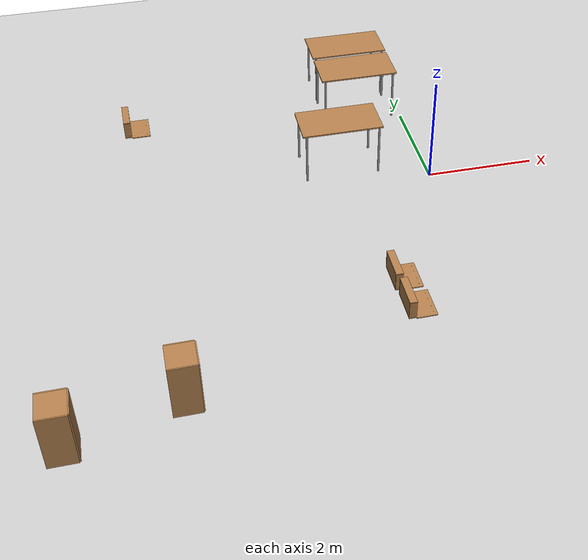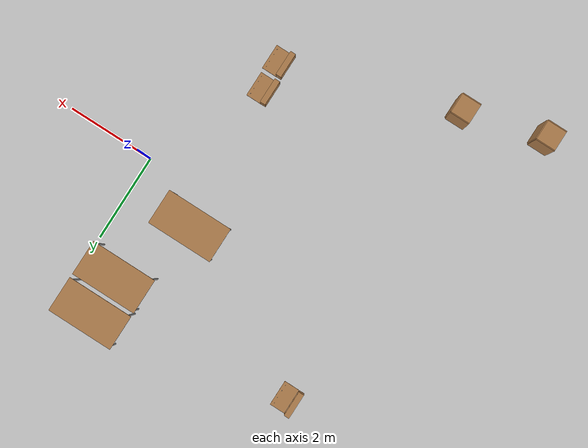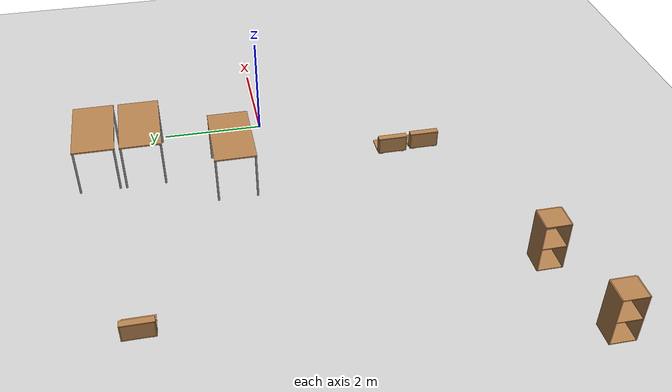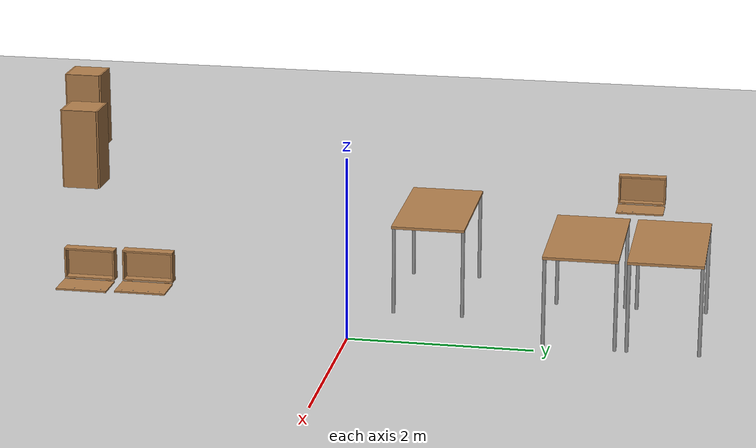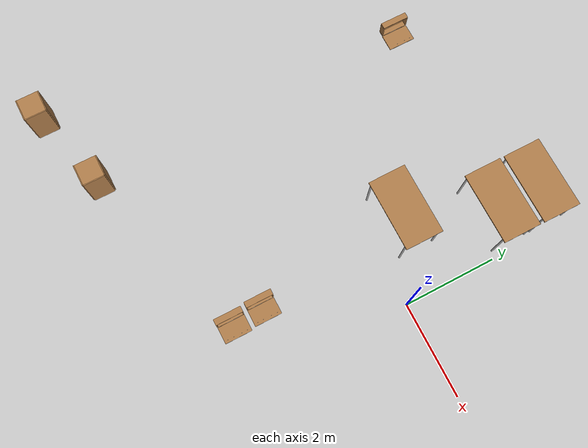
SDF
<sdf version="1.7">
 <world name="default">
  <model name="ground_plane">
   <static>1</static>
   <link name="link">
    <collision name="collision">
     <geometry><plane><normal>0 0 1</normal><size>100 100</size></plane></geometry>
     <surface><friction><ode><mu>100</mu><mu2>50</mu2></ode></friction></surface>
    </collision>
    <visual name="visual">
     <cast_shadows>0</cast_shadows>
     <geometry><plane><normal>0 0 1</normal><size>100 100</size></plane></geometry>
     <material>
      <script><uri>file://media/materials/scripts/gazebo.material</uri><name>Gazebo/Grey</name></script>
     </material>
    </visual>
   </link>
  </model>
  <model name="table">
   <static>1</static>
   <link name="link">
    <collision name="surface">
     <pose>0 0 1 0 -0 0</pose>
     <geometry><box><size>1.5 0.8 0.03</size></box></geometry>
     <surface><friction><ode><mu>0.6</mu><mu2>0.6</mu2></ode></friction></surface>
    </collision>
    <visual name="visual1">
     <pose>0 0 1 0 -0 0</pose>
     <geometry><box><size>1.5 0.8 0.03</size></box></geometry>
     <material>
      <script><uri>file://media/materials/scripts/gazebo.material</uri><name>Gazebo/Wood</name></script>
     </material>
    </visual>
    <collision name="front_left_leg">
     <pose>0.68 0.38 0.5 0 -0 0</pose>
     <geometry><cylinder><radius>0.02</radius><length>1</length></cylinder></geometry>
    </collision>
    <visual name="front_left_leg">
     <pose>0.68 0.38 0.5 0 -0 0</pose>
     <geometry><cylinder><radius>0.02</radius><length>1</length></cylinder></geometry>
     <material>
      <script><uri>file://media/materials/scripts/gazebo.material</uri><name>Gazebo/Grey</name></script>
     </material>
    </visual>
    <collision name="front_right_leg">
     <pose>0.68 -0.38 0.5 0 -0 0</pose>
     <geometry><cylinder><radius>0.02</radius><length>1</length></cylinder></geometry>
    </collision>
    <visual name="front_right_leg">
     <pose>0.68 -0.38 0.5 0 -0 0</pose>
     <geometry><cylinder><radius>0.02</radius><length>1</length></cylinder></geometry>
     <material>
      <script><uri>file://media/materials/scripts/gazebo.material</uri><name>Gazebo/Grey</name></script>
     </material>
    </visual>
    <collision name="back_right_leg">
     <pose>-0.68 -0.38 0.5 0 -0 0</pose>
     <geometry><cylinder><radius>0.02</radius><length>1</length></cylinder></geometry>
    </collision>
    <visual name="back_right_leg">
     <pose>-0.68 -0.38 0.5 0 -0 0</pose>
     <geometry><cylinder><radius>0.02</radius><length>1</length></cylinder></geometry>
     <material>
      <script><uri>file://media/materials/scripts/gazebo.material</uri><name>Gazebo/Grey</name></script>
     </material>
    </visual>
    <collision name="back_left_leg">
     <pose>-0.68 0.38 0.5 0 -0 0</pose>
     <geometry><cylinder><radius>0.02</radius><length>1</length></cylinder></geometry>
    </collision>
    <visual name="back_left_leg">
     <pose>-0.68 0.38 0.5 0 -0 0</pose>
     <geometry><cylinder><radius>0.02</radius><length>1</length></cylinder></geometry>
     <material>
      <script><uri>file://media/materials/scripts/gazebo.material</uri><name>Gazebo/Grey</name></script>
     </material>
    </visual>
   </link>
   <pose>-1.58266 0.729495 0 0 -0 0</pose>
  </model>
  <model name="table_0">
   <static>1</static>
   <link name="link">
    <collision name="surface">
     <pose>0 0 1 0 -0 0</pose>
     <geometry><box><size>1.5 0.8 0.03</size></box></geometry>
     <surface><friction><ode><mu>0.6</mu><mu2>0.6</mu2></ode></friction></surface>
    </collision>
    <visual name="visual1">
     <pose>0 0 1 0 -0 0</pose>
     <geometry><box><size>1.5 0.8 0.03</size></box></geometry>
     <material>
      <script><uri>file://media/materials/scripts/gazebo.material</uri><name>Gazebo/Wood</name></script>
     </material>
    </visual>
    <collision name="front_left_leg">
     <pose>0.68 0.38 0.5 0 -0 0</pose>
     <geometry><cylinder><radius>0.02</radius><length>1</length></cylinder></geometry>
    </collision>
    <visual name="front_left_leg">
     <pose>0.68 0.38 0.5 0 -0 0</pose>
     <geometry><cylinder><radius>0.02</radius><length>1</length></cylinder></geometry>
     <material>
      <script><uri>file://media/materials/scripts/gazebo.material</uri><name>Gazebo/Grey</name></script>
     </material>
    </visual>
    <collision name="front_right_leg">
     <pose>0.68 -0.38 0.5 0 -0 0</pose>
     <geometry><cylinder><radius>0.02</radius><length>1</length></cylinder></geometry>
    </collision>
    <visual name="front_right_leg">
     <pose>0.68 -0.38 0.5 0 -0 0</pose>
     <geometry><cylinder><radius>0.02</radius><length>1</length></cylinder></geometry>
     <material>
      <script><uri>file://media/materials/scripts/gazebo.material</uri><name>Gazebo/Grey</name></script>
     </material>
    </visual>
    <collision name="back_right_leg">
     <pose>-0.68 -0.38 0.5 0 -0 0</pose>
     <geometry><cylinder><radius>0.02</radius><length>1</length></cylinder></geometry>
    </collision>
    <visual name="back_right_leg">
     <pose>-0.68 -0.38 0.5 0 -0 0</pose>
     <geometry><cylinder><radius>0.02</radius><length>1</length></cylinder></geometry>
     <material>
      <script><uri>file://media/materials/scripts/gazebo.material</uri><name>Gazebo/Grey</name></script>
     </material>
    </visual>
    <collision name="back_left_leg">
     <pose>-0.68 0.38 0.5 0 -0 0</pose>
     <geometry><cylinder><radius>0.02</radius><length>1</length></cylinder></geometry>
    </collision>
    <visual name="back_left_leg">
     <pose>-0.68 0.38 0.5 0 -0 0</pose>
     <geometry><cylinder><radius>0.02</radius><length>1</length></cylinder></geometry>
     <material>
      <script><uri>file://media/materials/scripts/gazebo.material</uri><name>Gazebo/Grey</name></script>
     </material>
    </visual>
   </link>
   <pose>-0.842738 2.45748 0 0 -0 0</pose>
  </model>
  <model name="table_1">
   <static>1</static>
   <link name="link">
    <collision name="surface">
     <pose>0 0 1 0 -0 0</pose>
     <geometry><box><size>1.5 0.8 0.03</size></box></geometry>
     <surface><friction><ode><mu>0.6</mu><mu2>0.6</mu2></ode></friction></surface>
    </collision>
    <visual name="visual1">
     <pose>0 0 1 0 -0 0</pose>
     <geometry><box><size>1.5 0.8 0.03</size></box></geometry>
     <material>
      <script><uri>file://media/materials/scripts/gazebo.material</uri><name>Gazebo/Wood</name></script>
     </material>
    </visual>
    <collision name="front_left_leg">
     <pose>0.68 0.38 0.5 0 -0 0</pose>
     <geometry><cylinder><radius>0.02</radius><length>1</length></cylinder></geometry>
    </collision>
    <visual name="front_left_leg">
     <pose>0.68 0.38 0.5 0 -0 0</pose>
     <geometry><cylinder><radius>0.02</radius><length>1</length></cylinder></geometry>
     <material>
      <script><uri>file://media/materials/scripts/gazebo.material</uri><name>Gazebo/Grey</name></script>
     </material>
    </visual>
    <collision name="front_right_leg">
     <pose>0.68 -0.38 0.5 0 -0 0</pose>
     <geometry><cylinder><radius>0.02</radius><length>1</length></cylinder></geometry>
    </collision>
    <visual name="front_right_leg">
     <pose>0.68 -0.38 0.5 0 -0 0</pose>
     <geometry><cylinder><radius>0.02</radius><length>1</length></cylinder></geometry>
     <material>
      <script><uri>file://media/materials/scripts/gazebo.material</uri><name>Gazebo/Grey</name></script>
     </material>
    </visual>
    <collision name="back_right_leg">
     <pose>-0.68 -0.38 0.5 0 -0 0</pose>
     <geometry><cylinder><radius>0.02</radius><length>1</length></cylinder></geometry>
    </collision>
    <visual name="back_right_leg">
     <pose>-0.68 -0.38 0.5 0 -0 0</pose>
     <geometry><cylinder><radius>0.02</radius><length>1</length></cylinder></geometry>
     <material>
      <script><uri>file://media/materials/scripts/gazebo.material</uri><name>Gazebo/Grey</name></script>
     </material>
    </visual>
    <collision name="back_left_leg">
     <pose>-0.68 0.38 0.5 0 -0 0</pose>
     <geometry><cylinder><radius>0.02</radius><length>1</length></cylinder></geometry>
    </collision>
    <visual name="back_left_leg">
     <pose>-0.68 0.38 0.5 0 -0 0</pose>
     <geometry><cylinder><radius>0.02</radius><length>1</length></cylinder></geometry>
     <material>
      <script><uri>file://media/materials/scripts/gazebo.material</uri><name>Gazebo/Grey</name></script>
     </material>
    </visual>
   </link>
   <pose>-0.836669 3.34338 0 0 -0 0</pose>
  </model>
  <model name="wooden_case">
   <link name="base">
    <pose>0 0 0.024 0 -0 0</pose>
    <inertial>
     <pose>-0.022184 0 0.171592 0 -0 0</pose>
     <mass>3.96264</mass>
     <inertia>
      <ixx>0.213536</ixx>
      <ixy>0</ixy>
      <ixz>0.000779377</ixz>
      <iyy>0.0708943</iyy>
      <iyz>0</iyz>
      <izz>0.154604</izz>
     </inertia>
    </inertial>
    <collision name="collision_back">
     <pose>-0.053975 0 0.1778 0 -0 0</pose>
     <geometry><box><size>0.01905 0.5461 0.3175</size></box></geometry>
     <surface>
      <contact>
       <poissons_ratio>0.347</poissons_ratio>
       <elastic_modulus>8.8e+09</elastic_modulus>
       <ode><kp>100000</kp><kd>100</kd><max_vel>100</max_vel><min_depth>0.001</min_depth></ode>
      </contact>
      <friction>
       <torsional>
        <coefficient>1</coefficient>
        <use_patch_radius>0</use_patch_radius>
        <surface_radius>0.01</surface_radius>
       </torsional>
      </friction>
     </surface>
    </collision>
    <visual name="visual_back">
     <pose>-0.053975 0 0.1778 0 -0 0</pose>
     <geometry><box><size>0.01905 0.5461 0.3175</size></box></geometry>
     <material>
      <script><uri>file://media/materials/scripts/gazebo.material</uri><name>Gazebo/Wood</name></script>
     </material>
    </visual>
    <collision name="collision_bottom">
     <pose>0 0 0.009525 0 -0 0</pose>
     <geometry><box><size>0.127 0.5842 0.01905</size></box></geometry>
     <surface>
      <contact>
       <poissons_ratio>0.347</poissons_ratio>
       <elastic_modulus>8.8e+09</elastic_modulus>
       <ode><kp>100000</kp><kd>100</kd><max_vel>100</max_vel><min_depth>0.001</min_depth></ode>
      </contact>
      <friction>
       <torsional>
        <coefficient>1</coefficient>
        <use_patch_radius>0</use_patch_radius>
        <surface_radius>0.01</surface_radius>
       </torsional>
      </friction>
     </surface>
    </collision>
    <visual name="visual_bottom">
     <pose>0 0 0.009525 0 -0 0</pose>
     <geometry><box><size>0.127 0.5842 0.01905</size></box></geometry>
     <material>
      <script><uri>file://media/materials/scripts/gazebo.material</uri><name>Gazebo/Wood</name></script>
     </material>
    </visual>
    <collision name="collision_top">
     <pose>0 0 0.346075 0 -0 0</pose>
     <geometry><box><size>0.127 0.5842 0.01905</size></box></geometry>
     <surface>
      <contact>
       <poissons_ratio>0.347</poissons_ratio>
       <elastic_modulus>8.8e+09</elastic_modulus>
       <ode><kp>100000</kp><kd>100</kd><max_vel>100</max_vel><min_depth>0.001</min_depth></ode>
      </contact>
      <friction>
       <torsional>
        <coefficient>1</coefficient>
        <use_patch_radius>0</use_patch_radius>
        <surface_radius>0.01</surface_radius>
       </torsional>
      </friction>
     </surface>
    </collision>
    <visual name="visual_top">
     <pose>0 0 0.346075 0 -0 0</pose>
     <geometry><box><size>0.127 0.5842 0.01905</size></box></geometry>
     <material>
      <script><uri>file://media/materials/scripts/gazebo.material</uri><name>Gazebo/Wood</name></script>
     </material>
    </visual>
    <collision name="collision_left">
     <pose>0 -0.282575 0.1778 0 -0 0</pose>
     <geometry><box><size>0.127 0.01905 0.3175</size></box></geometry>
     <surface>
      <contact>
       <poissons_ratio>0.347</poissons_ratio>
       <elastic_modulus>8.8e+09</elastic_modulus>
       <ode><kp>100000</kp><kd>100</kd><max_vel>100</max_vel><min_depth>0.001</min_depth></ode>
      </contact>
      <friction>
       <torsional>
        <coefficient>1</coefficient>
        <use_patch_radius>0</use_patch_radius>
        <surface_radius>0.01</surface_radius>
       </torsional>
      </friction>
     </surface>
    </collision>
    <visual name="visual_left">
     <pose>0 -0.282575 0.1778 0 -0 0</pose>
     <geometry><box><size>0.127 0.01905 0.3175</size></box></geometry>
     <material>
      <script><uri>file://media/materials/scripts/gazebo.material</uri><name>Gazebo/Wood</name></script>
     </material>
    </visual>
    <collision name="collision_right">
     <pose>0 0.282575 0.1778 0 -0 0</pose>
     <geometry><box><size>0.127 0.01905 0.3175</size></box></geometry>
     <surface>
      <contact>
       <poissons_ratio>0.347</poissons_ratio>
       <elastic_modulus>8.8e+09</elastic_modulus>
       <ode><kp>100000</kp><kd>100</kd><max_vel>100</max_vel><min_depth>0.001</min_depth></ode>
      </contact>
      <friction>
       <torsional>
        <coefficient>1</coefficient>
        <use_patch_radius>0</use_patch_radius>
        <surface_radius>0.01</surface_radius>
       </torsional>
      </friction>
     </surface>
    </collision>
    <visual name="visual_right">
     <pose>0 0.282575 0.1778 0 -0 0</pose>
     <geometry><box><size>0.127 0.01905 0.3175</size></box></geometry>
     <material>
      <script><uri>file://media/materials/scripts/gazebo.material</uri><name>Gazebo/Wood</name></script>
     </material>
    </visual>
    <collision name="collision_block_left">
     <pose>0.0095 -0.2151 -0.012 0 -0 0</pose>
     <geometry><box><size>0.108 0.05 0.024</size></box></geometry>
     <surface>
      <contact>
       <poissons_ratio>0.347</poissons_ratio>
       <elastic_modulus>8.8e+09</elastic_modulus>
       <ode><kp>100000</kp><kd>100</kd><max_vel>100</max_vel><min_depth>0.001</min_depth></ode>
      </contact>
      <friction>
       <torsional>
        <coefficient>1</coefficient>
        <use_patch_radius>0</use_patch_radius>
        <surface_radius>0.01</surface_radius>
       </torsional>
      </friction>
     </surface>
    </collision>
    <visual name="visual_block_left">
     <pose>0.0095 -0.2151 -0.012 0 -0 0</pose>
     <geometry><box><size>0.108 0.05 0.024</size></box></geometry>
     <material>
      <script><uri>file://media/materials/scripts/gazebo.material</uri><name>Gazebo/Wood</name></script>
     </material>
    </visual>
    <collision name="collision_block_right">
     <pose>0.0095 0.2151 -0.012 0 -0 0</pose>
     <geometry><box><size>0.108 0.05 0.024</size></box></geometry>
     <surface>
      <contact>
       <poissons_ratio>0.347</poissons_ratio>
       <elastic_modulus>8.8e+09</elastic_modulus>
       <ode><kp>100000</kp><kd>100</kd><max_vel>100</max_vel><min_depth>0.001</min_depth></ode>
      </contact>
      <friction>
       <torsional>
        <coefficient>1</coefficient>
        <use_patch_radius>0</use_patch_radius>
        <surface_radius>0.01</surface_radius>
       </torsional>
      </friction>
     </surface>
    </collision>
    <visual name="visual_block_right">
     <pose>0.0095 0.2151 -0.012 0 -0 0</pose>
     <geometry><box><size>0.108 0.05 0.024</size></box></geometry>
     <material>
      <script><uri>file://media/materials/scripts/gazebo.material</uri><name>Gazebo/Wood</name></script>
     </material>
    </visual>
   </link>
   <link name="lid">
    <pose>0.243775 0 0.009525 0 -0 0</pose>
    <inertial>
     <mass>1.97874</mass>
     <inertia>
      <ixx>0.0563367</ixx>
      <ixy>0</ixy>
      <ixz>0</ixz>
      <iyy>0.020911</iyy>
      <iyz>0</iyz>
      <izz>0.0771281</izz>
     </inertia>
    </inertial>
    <collision name="collision">
     <geometry><box><size>0.3556 0.5842 0.01905</size></box></geometry>
     <surface>
      <contact>
       <poissons_ratio>0.347</poissons_ratio>
       <elastic_modulus>8.8e+09</elastic_modulus>
       <ode><kp>100000</kp><kd>100</kd><max_vel>100</max_vel><min_depth>0.001</min_depth></ode>
      </contact>
      <friction>
       <torsional>
        <coefficient>1</coefficient>
        <use_patch_radius>0</use_patch_radius>
        <surface_radius>0.01</surface_radius>
       </torsional>
      </friction>
     </surface>
    </collision>
    <visual name="visual">
     <geometry><box><size>0.3556 0.5842 0.01905</size></box></geometry>
     <material>
      <script><uri>file://media/materials/scripts/gazebo.material</uri><name>Gazebo/Wood</name></script>
     </material>
    </visual>
    <visual name="tee_nut_1">
     <pose>0.122 -0.216 0 0 -0 0</pose>
     <geometry><cylinder><radius>0.00635</radius><length>0.0192405</length></cylinder></geometry>
     <material>
      <script><uri>file://media/materials/scripts/gazebo.material</uri><name>Gazebo/Grey</name></script>
     </material>
    </visual>
    <visual name="tee_nut_2">
     <pose>0.122 -0.088 0 0 -0 0</pose>
     <geometry><cylinder><radius>0.00635</radius><length>0.0192405</length></cylinder></geometry>
     <material>
      <script><uri>file://media/materials/scripts/gazebo.material</uri><name>Gazebo/Grey</name></script>
     </material>
    </visual>
    <visual name="tee_nut_3">
     <pose>0.122 0.088 0 0 -0 0</pose>
     <geometry><cylinder><radius>0.00635</radius><length>0.0192405</length></cylinder></geometry>
     <material>
      <script><uri>file://media/materials/scripts/gazebo.material</uri><name>Gazebo/Grey</name></script>
     </material>
    </visual>
    <visual name="tee_nut_4">
     <pose>0.122 0.216 0 0 -0 0</pose>
     <geometry><cylinder><radius>0.00635</radius><length>0.0192405</length></cylinder></geometry>
     <material>
      <script><uri>file://media/materials/scripts/gazebo.material</uri><name>Gazebo/Grey</name></script>
     </material>
    </visual>
   </link>
   <joint name="lid_hinge" type="revolute">
    <pose>-0.1778 0 0.01905 0 -0 0</pose>
    <parent>base</parent>
    <child>lid</child>
    <axis>
     <xyz>0 1 0</xyz>
     <limit><upper>0.523599</upper><lower>-1.5708</lower></limit>
     <dynamics><spring_reference>0</spring_reference><spring_stiffness>0</spring_stiffness></dynamics>
    </axis>
   </joint>
   <pose>-5.41069 2.72548 0 0 -0 0</pose>
  </model>
  <model name="cabinet_1">
   <static>1</static>
   <link name="cabinet_bottom_plate">
    <inertial>
     <pose>0 0 -1 0 -0 0</pose>
     <inertia><ixx>2.05</ixx><ixy>0</ixy><ixz>0</ixz><iyy>2.05</iyy><iyz>0</iyz><izz>2.05</izz></inertia>
     <mass>25</mass>
    </inertial>
    <collision name="cabinet_bottom_plate_geom">
     <pose>0 0 0.01 0 -0 0</pose>
     <geometry><box><size>0.45 0.45 0.02</size></box></geometry>
    </collision>
    <visual name="cabinet_bottom_plate_geom_visual">
     <pose>0 0 0.01 0 -0 0</pose>
     <geometry><box><size>0.45 0.45 0.02</size></box></geometry>
     <material>
      <script><uri>file://media/materials/scripts/gazebo.material</uri><name>Gazebo/Wood</name></script>
     </material>
    </visual>
    <collision name="cabinet_bottom_plate_geom_cabinet_back_plate">
     <pose>0.235 0 0.51 0 -0 0</pose>
     <geometry><box><size>0.02 0.45 1.02</size></box></geometry>
    </collision>
    <visual name="cabinet_bottom_plate_geom_cabinet_back_plate_visual">
     <pose>0.235 0 0.51 0 -0 0</pose>
     <geometry><box><size>0.02 0.45 1.02</size></box></geometry>
     <material>
      <script><uri>file://media/materials/scripts/gazebo.material</uri><name>Gazebo/Wood</name></script>
     </material>
    </visual>
    <collision name="cabinet_bottom_plate_geom_cabinet_left_plate">
     <pose>0 0.235 0.51 0 -0 0</pose>
     <geometry><box><size>0.45 0.02 1.02</size></box></geometry>
    </collision>
    <visual name="cabinet_bottom_plate_geom_cabinet_left_plate_visual">
     <pose>0 0.235 0.51 0 -0 0</pose>
     <geometry><box><size>0.45 0.02 1.02</size></box></geometry>
     <material>
      <script><uri>file://media/materials/scripts/gazebo.material</uri><name>Gazebo/Wood</name></script>
     </material>
    </visual>
    <collision name="cabinet_bottom_plate_geom_cabinet_middle_plate">
     <pose>0 0 0.51 0 -0 0</pose>
     <geometry><box><size>0.45 0.45 0.02</size></box></geometry>
    </collision>
    <visual name="cabinet_bottom_plate_geom_cabinet_middle_plate_visual">
     <pose>0 0 0.51 0 -0 0</pose>
     <geometry><box><size>0.45 0.45 0.02</size></box></geometry>
     <material>
      <script><uri>file://media/materials/scripts/gazebo.material</uri><name>Gazebo/Wood</name></script>
     </material>
    </visual>
    <collision name="cabinet_bottom_plate_geom_cabinet_right_plate">
     <pose>0 -0.235 0.51 0 -0 0</pose>
     <geometry><box><size>0.45 0.02 1.02</size></box></geometry>
    </collision>
    <visual name="cabinet_bottom_plate_geom_cabinet_right_plate_visual">
     <pose>0 -0.235 0.51 0 -0 0</pose>
     <geometry><box><size>0.45 0.02 1.02</size></box></geometry>
     <material>
      <script><uri>file://media/materials/scripts/gazebo.material</uri><name>Gazebo/Wood</name></script>
     </material>
    </visual>
    <collision name="cabinet_bottom_plate_geom_cabinet_top_plate">
     <pose>0 0 1.01 0 -0 0</pose>
     <geometry><box><size>0.45 0.45 0.02</size></box></geometry>
    </collision>
    <visual name="cabinet_bottom_plate_geom_cabinet_top_plate_visual">
     <pose>0 0 1.01 0 -0 0</pose>
     <geometry><box><size>0.45 0.45 0.02</size></box></geometry>
     <material>
      <script><uri>file://media/materials/scripts/gazebo.material</uri><name>Gazebo/Wood</name></script>
     </material>
    </visual>
   </link>
   <pose>-6.84809 -4.8686 0 0 -0 0</pose>
  </model>
  <model name="cabinet_2">
   <static>1</static>
   <link name="cabinet_bottom_plate">
    <inertial>
     <pose>0 0 -1 0 -0 0</pose>
     <inertia><ixx>2.05</ixx><ixy>0</ixy><ixz>0</ixz><iyy>2.05</iyy><iyz>0</iyz><izz>2.05</izz></inertia>
     <mass>25</mass>
    </inertial>
    <collision name="cabinet_bottom_plate_geom">
     <pose>0 0 0.01 0 -0 0</pose>
     <geometry><box><size>0.45 0.45 0.02</size></box></geometry>
    </collision>
    <visual name="cabinet_bottom_plate_geom_visual">
     <pose>0 0 0.01 0 -0 0</pose>
     <geometry><box><size>0.45 0.45 0.02</size></box></geometry>
     <material>
      <script><uri>file://media/materials/scripts/gazebo.material</uri><name>Gazebo/Wood</name></script>
     </material>
    </visual>
    <collision name="cabinet_bottom_plate_geom_cabinet_back_plate">
     <pose>0.235 0 0.51 0 -0 0</pose>
     <geometry><box><size>0.02 0.45 1.02</size></box></geometry>
    </collision>
    <visual name="cabinet_bottom_plate_geom_cabinet_back_plate_visual">
     <pose>0.235 0 0.51 0 -0 0</pose>
     <geometry><box><size>0.02 0.45 1.02</size></box></geometry>
     <material>
      <script><uri>file://media/materials/scripts/gazebo.material</uri><name>Gazebo/Wood</name></script>
     </material>
    </visual>
    <collision name="cabinet_bottom_plate_geom_cabinet_left_plate">
     <pose>0 0.235 0.51 0 -0 0</pose>
     <geometry><box><size>0.45 0.02 1.02</size></box></geometry>
    </collision>
    <visual name="cabinet_bottom_plate_geom_cabinet_left_plate_visual">
     <pose>0 0.235 0.51 0 -0 0</pose>
     <geometry><box><size>0.45 0.02 1.02</size></box></geometry>
     <material>
      <script><uri>file://media/materials/scripts/gazebo.material</uri><name>Gazebo/Wood</name></script>
     </material>
    </visual>
    <collision name="cabinet_bottom_plate_geom_cabinet_middle_plate">
     <pose>0 0 0.51 0 -0 0</pose>
     <geometry><box><size>0.45 0.45 0.02</size></box></geometry>
    </collision>
    <visual name="cabinet_bottom_plate_geom_cabinet_middle_plate_visual">
     <pose>0 0 0.51 0 -0 0</pose>
     <geometry><box><size>0.45 0.45 0.02</size></box></geometry>
     <material>
      <script><uri>file://media/materials/scripts/gazebo.material</uri><name>Gazebo/Wood</name></script>
     </material>
    </visual>
    <collision name="cabinet_bottom_plate_geom_cabinet_right_plate">
     <pose>0 -0.235 0.51 0 -0 0</pose>
     <geometry><box><size>0.45 0.02 1.02</size></box></geometry>
    </collision>
    <visual name="cabinet_bottom_plate_geom_cabinet_right_plate_visual">
     <pose>0 -0.235 0.51 0 -0 0</pose>
     <geometry><box><size>0.45 0.02 1.02</size></box></geometry>
     <material>
      <script><uri>file://media/materials/scripts/gazebo.material</uri><name>Gazebo/Wood</name></script>
     </material>
    </visual>
    <collision name="cabinet_bottom_plate_geom_cabinet_top_plate">
     <pose>0 0 1.01 0 -0 0</pose>
     <geometry><box><size>0.45 0.45 0.02</size></box></geometry>
    </collision>
    <visual name="cabinet_bottom_plate_geom_cabinet_top_plate_visual">
     <pose>0 0 1.01 0 -0 0</pose>
     <geometry><box><size>0.45 0.45 0.02</size></box></geometry>
     <material>
      <script><uri>file://media/materials/scripts/gazebo.material</uri><name>Gazebo/Wood</name></script>
     </material>
    </visual>
   </link>
   <pose>-5.06456 -4.3863 0 0 -0 0</pose>
  </model>
  <model name="wooden_case_0">
   <link name="base">
    <pose>0 0 0.024 0 -0 0</pose>
    <inertial>
     <pose>-0.022184 0 0.171592 0 -0 0</pose>
     <mass>3.96264</mass>
     <inertia>
      <ixx>0.213536</ixx>
      <ixy>0</ixy>
      <ixz>0.000779377</ixz>
      <iyy>0.0708943</iyy>
      <iyz>0</iyz>
      <izz>0.154604</izz>
     </inertia>
    </inertial>
    <collision name="collision_back">
     <pose>-0.053975 0 0.1778 0 -0 0</pose>
     <geometry><box><size>0.01905 0.5461 0.3175</size></box></geometry>
     <surface>
      <contact>
       <poissons_ratio>0.347</poissons_ratio>
       <elastic_modulus>8.8e+09</elastic_modulus>
       <ode><kp>100000</kp><kd>100</kd><max_vel>100</max_vel><min_depth>0.001</min_depth></ode>
      </contact>
      <friction>
       <torsional>
        <coefficient>1</coefficient>
        <use_patch_radius>0</use_patch_radius>
        <surface_radius>0.01</surface_radius>
       </torsional>
      </friction>
     </surface>
    </collision>
    <visual name="visual_back">
     <pose>-0.053975 0 0.1778 0 -0 0</pose>
     <geometry><box><size>0.01905 0.5461 0.3175</size></box></geometry>
     <material>
      <script><uri>file://media/materials/scripts/gazebo.material</uri><name>Gazebo/Wood</name></script>
     </material>
    </visual>
    <collision name="collision_bottom">
     <pose>0 0 0.009525 0 -0 0</pose>
     <geometry><box><size>0.127 0.5842 0.01905</size></box></geometry>
     <surface>
      <contact>
       <poissons_ratio>0.347</poissons_ratio>
       <elastic_modulus>8.8e+09</elastic_modulus>
       <ode><kp>100000</kp><kd>100</kd><max_vel>100</max_vel><min_depth>0.001</min_depth></ode>
      </contact>
      <friction>
       <torsional>
        <coefficient>1</coefficient>
        <use_patch_radius>0</use_patch_radius>
        <surface_radius>0.01</surface_radius>
       </torsional>
      </friction>
     </surface>
    </collision>
    <visual name="visual_bottom">
     <pose>0 0 0.009525 0 -0 0</pose>
     <geometry><box><size>0.127 0.5842 0.01905</size></box></geometry>
     <material>
      <script><uri>file://media/materials/scripts/gazebo.material</uri><name>Gazebo/Wood</name></script>
     </material>
    </visual>
    <collision name="collision_top">
     <pose>0 0 0.346075 0 -0 0</pose>
     <geometry><box><size>0.127 0.5842 0.01905</size></box></geometry>
     <surface>
      <contact>
       <poissons_ratio>0.347</poissons_ratio>
       <elastic_modulus>8.8e+09</elastic_modulus>
       <ode><kp>100000</kp><kd>100</kd><max_vel>100</max_vel><min_depth>0.001</min_depth></ode>
      </contact>
      <friction>
       <torsional>
        <coefficient>1</coefficient>
        <use_patch_radius>0</use_patch_radius>
        <surface_radius>0.01</surface_radius>
       </torsional>
      </friction>
     </surface>
    </collision>
    <visual name="visual_top">
     <pose>0 0 0.346075 0 -0 0</pose>
     <geometry><box><size>0.127 0.5842 0.01905</size></box></geometry>
     <material>
      <script><uri>file://media/materials/scripts/gazebo.material</uri><name>Gazebo/Wood</name></script>
     </material>
    </visual>
    <collision name="collision_left">
     <pose>0 -0.282575 0.1778 0 -0 0</pose>
     <geometry><box><size>0.127 0.01905 0.3175</size></box></geometry>
     <surface>
      <contact>
       <poissons_ratio>0.347</poissons_ratio>
       <elastic_modulus>8.8e+09</elastic_modulus>
       <ode><kp>100000</kp><kd>100</kd><max_vel>100</max_vel><min_depth>0.001</min_depth></ode>
      </contact>
      <friction>
       <torsional>
        <coefficient>1</coefficient>
        <use_patch_radius>0</use_patch_radius>
        <surface_radius>0.01</surface_radius>
       </torsional>
      </friction>
     </surface>
    </collision>
    <visual name="visual_left">
     <pose>0 -0.282575 0.1778 0 -0 0</pose>
     <geometry><box><size>0.127 0.01905 0.3175</size></box></geometry>
     <material>
      <script><uri>file://media/materials/scripts/gazebo.material</uri><name>Gazebo/Wood</name></script>
     </material>
    </visual>
    <collision name="collision_right">
     <pose>0 0.282575 0.1778 0 -0 0</pose>
     <geometry><box><size>0.127 0.01905 0.3175</size></box></geometry>
     <surface>
      <contact>
       <poissons_ratio>0.347</poissons_ratio>
       <elastic_modulus>8.8e+09</elastic_modulus>
       <ode><kp>100000</kp><kd>100</kd><max_vel>100</max_vel><min_depth>0.001</min_depth></ode>
      </contact>
      <friction>
       <torsional>
        <coefficient>1</coefficient>
        <use_patch_radius>0</use_patch_radius>
        <surface_radius>0.01</surface_radius>
       </torsional>
      </friction>
     </surface>
    </collision>
    <visual name="visual_right">
     <pose>0 0.282575 0.1778 0 -0 0</pose>
     <geometry><box><size>0.127 0.01905 0.3175</size></box></geometry>
     <material>
      <script><uri>file://media/materials/scripts/gazebo.material</uri><name>Gazebo/Wood</name></script>
     </material>
    </visual>
    <collision name="collision_block_left">
     <pose>0.0095 -0.2151 -0.012 0 -0 0</pose>
     <geometry><box><size>0.108 0.05 0.024</size></box></geometry>
     <surface>
      <contact>
       <poissons_ratio>0.347</poissons_ratio>
       <elastic_modulus>8.8e+09</elastic_modulus>
       <ode><kp>100000</kp><kd>100</kd><max_vel>100</max_vel><min_depth>0.001</min_depth></ode>
      </contact>
      <friction>
       <torsional>
        <coefficient>1</coefficient>
        <use_patch_radius>0</use_patch_radius>
        <surface_radius>0.01</surface_radius>
       </torsional>
      </friction>
     </surface>
    </collision>
    <visual name="visual_block_left">
     <pose>0.0095 -0.2151 -0.012 0 -0 0</pose>
     <geometry><box><size>0.108 0.05 0.024</size></box></geometry>
     <material>
      <script><uri>file://media/materials/scripts/gazebo.material</uri><name>Gazebo/Wood</name></script>
     </material>
    </visual>
    <collision name="collision_block_right">
     <pose>0.0095 0.2151 -0.012 0 -0 0</pose>
     <geometry><box><size>0.108 0.05 0.024</size></box></geometry>
     <surface>
      <contact>
       <poissons_ratio>0.347</poissons_ratio>
       <elastic_modulus>8.8e+09</elastic_modulus>
       <ode><kp>100000</kp><kd>100</kd><max_vel>100</max_vel><min_depth>0.001</min_depth></ode>
      </contact>
      <friction>
       <torsional>
        <coefficient>1</coefficient>
        <use_patch_radius>0</use_patch_radius>
        <surface_radius>0.01</surface_radius>
       </torsional>
      </friction>
     </surface>
    </collision>
    <visual name="visual_block_right">
     <pose>0.0095 0.2151 -0.012 0 -0 0</pose>
     <geometry><box><size>0.108 0.05 0.024</size></box></geometry>
     <material>
      <script><uri>file://media/materials/scripts/gazebo.material</uri><name>Gazebo/Wood</name></script>
     </material>
    </visual>
   </link>
   <link name="lid">
    <pose>0.243775 0 0.009525 0 -0 0</pose>
    <inertial>
     <mass>1.97874</mass>
     <inertia>
      <ixx>0.0563367</ixx>
      <ixy>0</ixy>
      <ixz>0</ixz>
      <iyy>0.020911</iyy>
      <iyz>0</iyz>
      <izz>0.0771281</izz>
     </inertia>
    </inertial>
    <collision name="collision">
     <geometry><box><size>0.3556 0.5842 0.01905</size></box></geometry>
     <surface>
      <contact>
       <poissons_ratio>0.347</poissons_ratio>
       <elastic_modulus>8.8e+09</elastic_modulus>
       <ode><kp>100000</kp><kd>100</kd><max_vel>100</max_vel><min_depth>0.001</min_depth></ode>
      </contact>
      <friction>
       <torsional>
        <coefficient>1</coefficient>
        <use_patch_radius>0</use_patch_radius>
        <surface_radius>0.01</surface_radius>
       </torsional>
      </friction>
     </surface>
    </collision>
    <visual name="visual">
     <geometry><box><size>0.3556 0.5842 0.01905</size></box></geometry>
     <material>
      <script><uri>file://media/materials/scripts/gazebo.material</uri><name>Gazebo/Wood</name></script>
     </material>
    </visual>
    <visual name="tee_nut_1">
     <pose>0.122 -0.216 0 0 -0 0</pose>
     <geometry><cylinder><radius>0.00635</radius><length>0.0192405</length></cylinder></geometry>
     <material>
      <script><uri>file://media/materials/scripts/gazebo.material</uri><name>Gazebo/Grey</name></script>
     </material>
    </visual>
    <visual name="tee_nut_2">
     <pose>0.122 -0.088 0 0 -0 0</pose>
     <geometry><cylinder><radius>0.00635</radius><length>0.0192405</length></cylinder></geometry>
     <material>
      <script><uri>file://media/materials/scripts/gazebo.material</uri><name>Gazebo/Grey</name></script>
     </material>
    </visual>
    <visual name="tee_nut_3">
     <pose>0.122 0.088 0 0 -0 0</pose>
     <geometry><cylinder><radius>0.00635</radius><length>0.0192405</length></cylinder></geometry>
     <material>
      <script><uri>file://media/materials/scripts/gazebo.material</uri><name>Gazebo/Grey</name></script>
     </material>
    </visual>
    <visual name="tee_nut_4">
     <pose>0.122 0.216 0 0 -0 0</pose>
     <geometry><cylinder><radius>0.00635</radius><length>0.0192405</length></cylinder></geometry>
     <material>
      <script><uri>file://media/materials/scripts/gazebo.material</uri><name>Gazebo/Grey</name></script>
     </material>
    </visual>
   </link>
   <joint name="lid_hinge" type="revolute">
    <pose>-0.1778 0 0.01905 0 -0 0</pose>
    <parent>base</parent>
    <child>lid</child>
    <axis>
     <xyz>0 1 0</xyz>
     <limit><upper>0.523599</upper><lower>-1.5708</lower></limit>
     <dynamics><spring_reference>0</spring_reference><spring_stiffness>0</spring_stiffness></dynamics>
    </axis>
   </joint>
   <pose>-1.3734 -3.23289 0 0 -0 0</pose>
  </model>
  <model name="wooden_case_1">
   <link name="base">
    <pose>0 0 0.024 0 -0 0</pose>
    <inertial>
     <pose>-0.022184 0 0.171592 0 -0 0</pose>
     <mass>3.96264</mass>
     <inertia>
      <ixx>0.213536</ixx>
      <ixy>0</ixy>
      <ixz>0.000779377</ixz>
      <iyy>0.0708943</iyy>
      <iyz>0</iyz>
      <izz>0.154604</izz>
     </inertia>
    </inertial>
    <collision name="collision_back">
     <pose>-0.053975 0 0.1778 0 -0 0</pose>
     <geometry><box><size>0.01905 0.5461 0.3175</size></box></geometry>
     <surface>
      <contact>
       <poissons_ratio>0.347</poissons_ratio>
       <elastic_modulus>8.8e+09</elastic_modulus>
       <ode><kp>100000</kp><kd>100</kd><max_vel>100</max_vel><min_depth>0.001</min_depth></ode>
      </contact>
      <friction>
       <torsional>
        <coefficient>1</coefficient>
        <use_patch_radius>0</use_patch_radius>
        <surface_radius>0.01</surface_radius>
       </torsional>
      </friction>
     </surface>
    </collision>
    <visual name="visual_back">
     <pose>-0.053975 0 0.1778 0 -0 0</pose>
     <geometry><box><size>0.01905 0.5461 0.3175</size></box></geometry>
     <material>
      <script><uri>file://media/materials/scripts/gazebo.material</uri><name>Gazebo/Wood</name></script>
     </material>
    </visual>
    <collision name="collision_bottom">
     <pose>0 0 0.009525 0 -0 0</pose>
     <geometry><box><size>0.127 0.5842 0.01905</size></box></geometry>
     <surface>
      <contact>
       <poissons_ratio>0.347</poissons_ratio>
       <elastic_modulus>8.8e+09</elastic_modulus>
       <ode><kp>100000</kp><kd>100</kd><max_vel>100</max_vel><min_depth>0.001</min_depth></ode>
      </contact>
      <friction>
       <torsional>
        <coefficient>1</coefficient>
        <use_patch_radius>0</use_patch_radius>
        <surface_radius>0.01</surface_radius>
       </torsional>
      </friction>
     </surface>
    </collision>
    <visual name="visual_bottom">
     <pose>0 0 0.009525 0 -0 0</pose>
     <geometry><box><size>0.127 0.5842 0.01905</size></box></geometry>
     <material>
      <script><uri>file://media/materials/scripts/gazebo.material</uri><name>Gazebo/Wood</name></script>
     </material>
    </visual>
    <collision name="collision_top">
     <pose>0 0 0.346075 0 -0 0</pose>
     <geometry><box><size>0.127 0.5842 0.01905</size></box></geometry>
     <surface>
      <contact>
       <poissons_ratio>0.347</poissons_ratio>
       <elastic_modulus>8.8e+09</elastic_modulus>
       <ode><kp>100000</kp><kd>100</kd><max_vel>100</max_vel><min_depth>0.001</min_depth></ode>
      </contact>
      <friction>
       <torsional>
        <coefficient>1</coefficient>
        <use_patch_radius>0</use_patch_radius>
        <surface_radius>0.01</surface_radius>
       </torsional>
      </friction>
     </surface>
    </collision>
    <visual name="visual_top">
     <pose>0 0 0.346075 0 -0 0</pose>
     <geometry><box><size>0.127 0.5842 0.01905</size></box></geometry>
     <material>
      <script><uri>file://media/materials/scripts/gazebo.material</uri><name>Gazebo/Wood</name></script>
     </material>
    </visual>
    <collision name="collision_left">
     <pose>0 -0.282575 0.1778 0 -0 0</pose>
     <geometry><box><size>0.127 0.01905 0.3175</size></box></geometry>
     <surface>
      <contact>
       <poissons_ratio>0.347</poissons_ratio>
       <elastic_modulus>8.8e+09</elastic_modulus>
       <ode><kp>100000</kp><kd>100</kd><max_vel>100</max_vel><min_depth>0.001</min_depth></ode>
      </contact>
      <friction>
       <torsional>
        <coefficient>1</coefficient>
        <use_patch_radius>0</use_patch_radius>
        <surface_radius>0.01</surface_radius>
       </torsional>
      </friction>
     </surface>
    </collision>
    <visual name="visual_left">
     <pose>0 -0.282575 0.1778 0 -0 0</pose>
     <geometry><box><size>0.127 0.01905 0.3175</size></box></geometry>
     <material>
      <script><uri>file://media/materials/scripts/gazebo.material</uri><name>Gazebo/Wood</name></script>
     </material>
    </visual>
    <collision name="collision_right">
     <pose>0 0.282575 0.1778 0 -0 0</pose>
     <geometry><box><size>0.127 0.01905 0.3175</size></box></geometry>
     <surface>
      <contact>
       <poissons_ratio>0.347</poissons_ratio>
       <elastic_modulus>8.8e+09</elastic_modulus>
       <ode><kp>100000</kp><kd>100</kd><max_vel>100</max_vel><min_depth>0.001</min_depth></ode>
      </contact>
      <friction>
       <torsional>
        <coefficient>1</coefficient>
        <use_patch_radius>0</use_patch_radius>
        <surface_radius>0.01</surface_radius>
       </torsional>
      </friction>
     </surface>
    </collision>
    <visual name="visual_right">
     <pose>0 0.282575 0.1778 0 -0 0</pose>
     <geometry><box><size>0.127 0.01905 0.3175</size></box></geometry>
     <material>
      <script><uri>file://media/materials/scripts/gazebo.material</uri><name>Gazebo/Wood</name></script>
     </material>
    </visual>
    <collision name="collision_block_left">
     <pose>0.0095 -0.2151 -0.012 0 -0 0</pose>
     <geometry><box><size>0.108 0.05 0.024</size></box></geometry>
     <surface>
      <contact>
       <poissons_ratio>0.347</poissons_ratio>
       <elastic_modulus>8.8e+09</elastic_modulus>
       <ode><kp>100000</kp><kd>100</kd><max_vel>100</max_vel><min_depth>0.001</min_depth></ode>
      </contact>
      <friction>
       <torsional>
        <coefficient>1</coefficient>
        <use_patch_radius>0</use_patch_radius>
        <surface_radius>0.01</surface_radius>
       </torsional>
      </friction>
     </surface>
    </collision>
    <visual name="visual_block_left">
     <pose>0.0095 -0.2151 -0.012 0 -0 0</pose>
     <geometry><box><size>0.108 0.05 0.024</size></box></geometry>
     <material>
      <script><uri>file://media/materials/scripts/gazebo.material</uri><name>Gazebo/Wood</name></script>
     </material>
    </visual>
    <collision name="collision_block_right">
     <pose>0.0095 0.2151 -0.012 0 -0 0</pose>
     <geometry><box><size>0.108 0.05 0.024</size></box></geometry>
     <surface>
      <contact>
       <poissons_ratio>0.347</poissons_ratio>
       <elastic_modulus>8.8e+09</elastic_modulus>
       <ode><kp>100000</kp><kd>100</kd><max_vel>100</max_vel><min_depth>0.001</min_depth></ode>
      </contact>
      <friction>
       <torsional>
        <coefficient>1</coefficient>
        <use_patch_radius>0</use_patch_radius>
        <surface_radius>0.01</surface_radius>
       </torsional>
      </friction>
     </surface>
    </collision>
    <visual name="visual_block_right">
     <pose>0.0095 0.2151 -0.012 0 -0 0</pose>
     <geometry><box><size>0.108 0.05 0.024</size></box></geometry>
     <material>
      <script><uri>file://media/materials/scripts/gazebo.material</uri><name>Gazebo/Wood</name></script>
     </material>
    </visual>
   </link>
   <link name="lid">
    <pose>0.243775 0 0.009525 0 -0 0</pose>
    <inertial>
     <mass>1.97874</mass>
     <inertia>
      <ixx>0.0563367</ixx>
      <ixy>0</ixy>
      <ixz>0</ixz>
      <iyy>0.020911</iyy>
      <iyz>0</iyz>
      <izz>0.0771281</izz>
     </inertia>
    </inertial>
    <collision name="collision">
     <geometry><box><size>0.3556 0.5842 0.01905</size></box></geometry>
     <surface>
      <contact>
       <poissons_ratio>0.347</poissons_ratio>
       <elastic_modulus>8.8e+09</elastic_modulus>
       <ode><kp>100000</kp><kd>100</kd><max_vel>100</max_vel><min_depth>0.001</min_depth></ode>
      </contact>
      <friction>
       <torsional>
        <coefficient>1</coefficient>
        <use_patch_radius>0</use_patch_radius>
        <surface_radius>0.01</surface_radius>
       </torsional>
      </friction>
     </surface>
    </collision>
    <visual name="visual">
     <geometry><box><size>0.3556 0.5842 0.01905</size></box></geometry>
     <material>
      <script><uri>file://media/materials/scripts/gazebo.material</uri><name>Gazebo/Wood</name></script>
     </material>
    </visual>
    <visual name="tee_nut_1">
     <pose>0.122 -0.216 0 0 -0 0</pose>
     <geometry><cylinder><radius>0.00635</radius><length>0.0192405</length></cylinder></geometry>
     <material>
      <script><uri>file://media/materials/scripts/gazebo.material</uri><name>Gazebo/Grey</name></script>
     </material>
    </visual>
    <visual name="tee_nut_2">
     <pose>0.122 -0.088 0 0 -0 0</pose>
     <geometry><cylinder><radius>0.00635</radius><length>0.0192405</length></cylinder></geometry>
     <material>
      <script><uri>file://media/materials/scripts/gazebo.material</uri><name>Gazebo/Grey</name></script>
     </material>
    </visual>
    <visual name="tee_nut_3">
     <pose>0.122 0.088 0 0 -0 0</pose>
     <geometry><cylinder><radius>0.00635</radius><length>0.0192405</length></cylinder></geometry>
     <material>
      <script><uri>file://media/materials/scripts/gazebo.material</uri><name>Gazebo/Grey</name></script>
     </material>
    </visual>
    <visual name="tee_nut_4">
     <pose>0.122 0.216 0 0 -0 0</pose>
     <geometry><cylinder><radius>0.00635</radius><length>0.0192405</length></cylinder></geometry>
     <material>
      <script><uri>file://media/materials/scripts/gazebo.material</uri><name>Gazebo/Grey</name></script>
     </material>
    </visual>
   </link>
   <joint name="lid_hinge" type="revolute">
    <pose>-0.1778 0 0.01905 0 -0 0</pose>
    <parent>base</parent>
    <child>lid</child>
    <axis>
     <xyz>0 1 0</xyz>
     <limit><upper>0.523599</upper><lower>-1.5708</lower></limit>
     <dynamics><spring_reference>0</spring_reference><spring_stiffness>0</spring_stiffness></dynamics>
    </axis>
   </joint>
   <pose>-1.40787 -2.56044 0 0 -0 0</pose>
  </model>
 </world>
</sdf>
